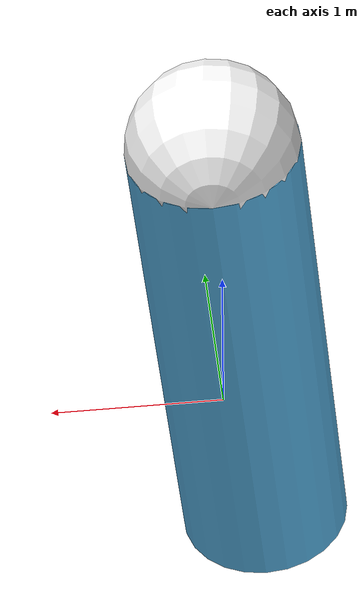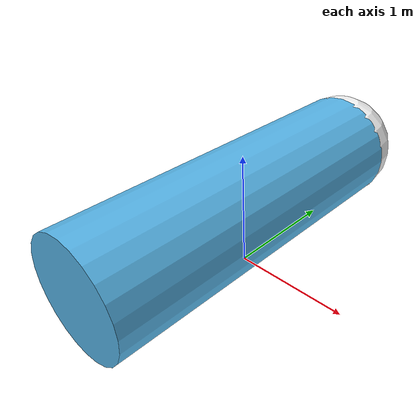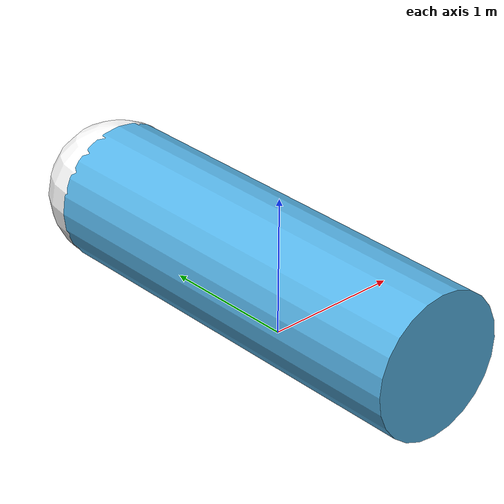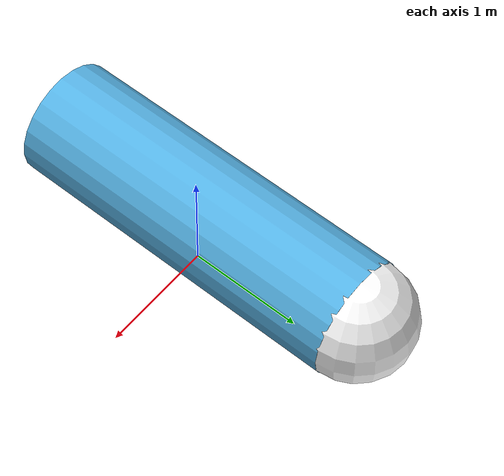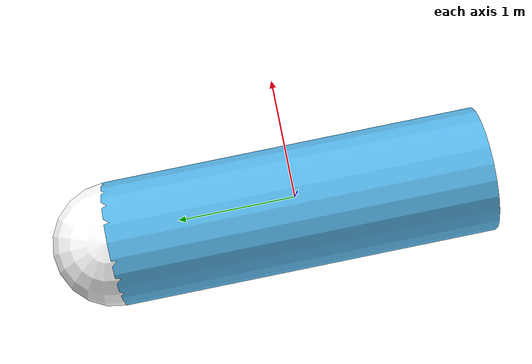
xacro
<?xml version="1.0"?>
<robot xmlns:xacro="http://www.ros.org/wiki/xacro"  name="robot">

    <xacro:include filename="inertial_macros.xacro"/>

    <material name="white">
        <color rgba="1 1 1 1" />
    </material>

    <material name="red">
        <color rgba="1 0 0 1" />
    </material>

    <material name="blue">
        <color rgba="0 0 1 1" />
    </material>

    <material name="green">
        <color rgba="0 1 0 1" />
    </material>

    <material name="gray">
        <color rgba="0.6 0.6 0.6 1" />
    </material>

    <link name="base_link">

    </link>

    <joint name="odom_joint" type="fixed">
        <parent link="base_link"/>
        <child link="chassis"/>
        <origin xyz="-0.1 0 0.5" rpy="${pi/2} 0 0"/>
        <axis xyz="0 0 0"/>
    </joint>

    <link name="chassis">
        <visual>
            <geometry>
                <cylinder radius="0.5" length="3" />
            </geometry>
        </visual>
    </link>

    <joint name="top_mesh_joint" type="fixed">
        <parent link="base_link" />
        <child link="top_mesh" />
        <origin xyz="-0.1 1.5 0.5" />
    </joint>

    <link name="top_mesh">
        <visual>
            <geometry>
                <sphere radius="0.5" />
            </geometry>
            <material name="white" />
        </visual>
    </link>

</robot>
